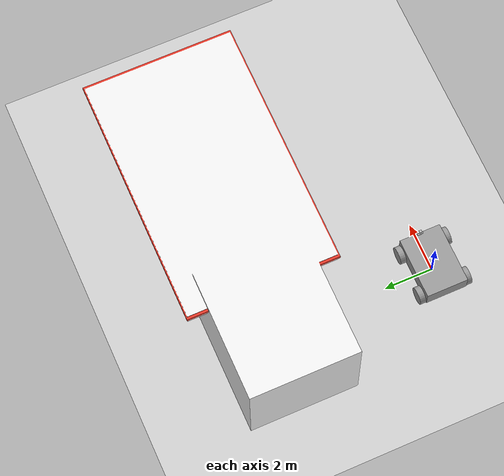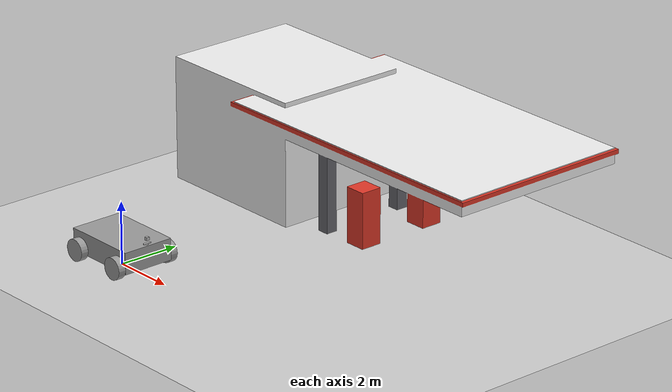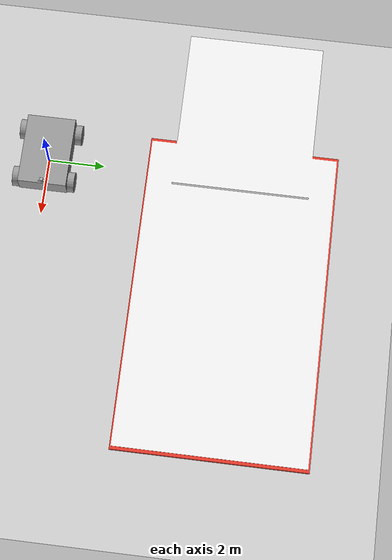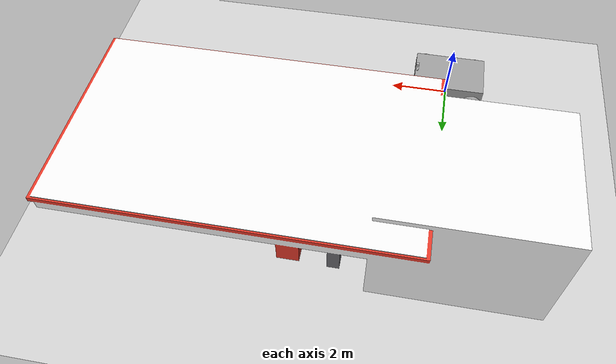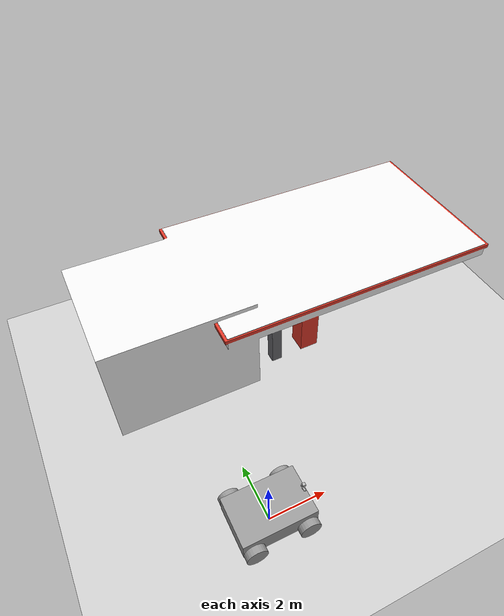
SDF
<?xml version="1.0" ?>
<sdf version="1.4">
  <world name="default">
    <include>
      <uri>model://ground_plane</uri>
    </include>
    <include>
      <uri>model://sun</uri>
    </include>
    <include>
      <uri>model://Car_Kinect_RGB</uri>
      <name>RGB_Teleop_Car</name>
      <pose>0.0 0.0 0.5 0 0 0</pose>
    </include>

  </world>
</sdf>
